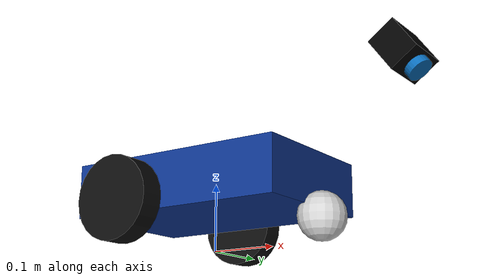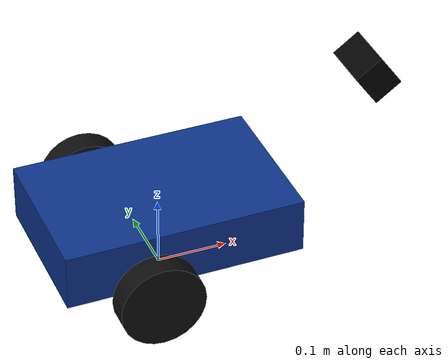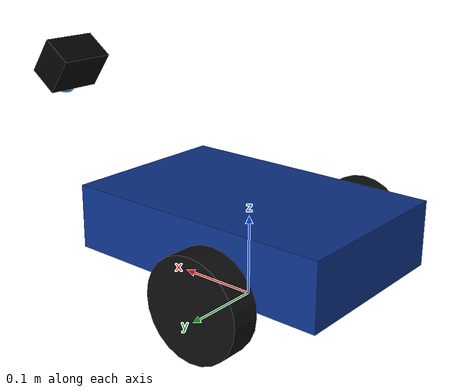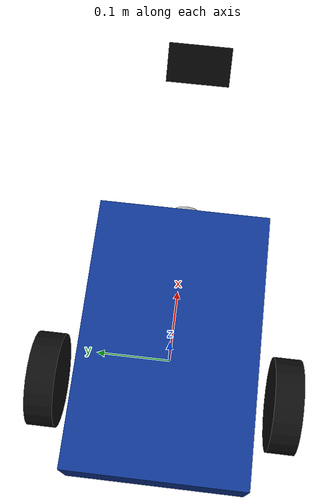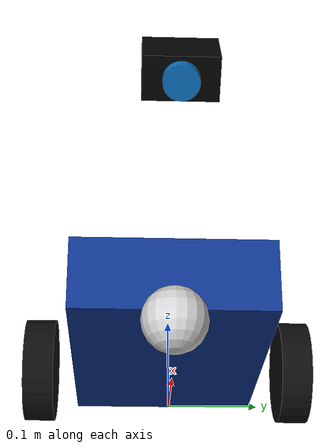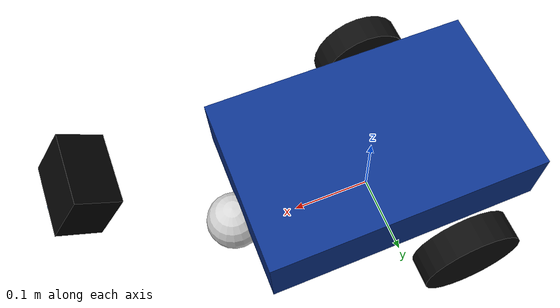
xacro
<?xml version="1.0"?>
<robot xmlns:xacro="http://ros.org/wiki/xacro" name="three_wheel_camera_car">

  <xacro:property name="wheel_radius" value="0.06"/>
  <xacro:property name="wheel_width" value="0.035"/>
  <xacro:property name="wheel_separation" value="0.30"/>
  <xacro:property name="base_z" value="0.09"/>

  <material name="body_blue"><color rgba="0.05 0.20 0.55 1"/></material>
  <material name="dark_gray"><color rgba="0.05 0.05 0.05 1"/></material>
  <material name="camera_black"><color rgba="0.01 0.01 0.01 1"/></material>
  <material name="glass"><color rgba="0.10 0.55 0.90 0.85"/></material>
  <material name="metal"><color rgba="0.55 0.55 0.58 1"/></material>
  <material name="caster_light"><color rgba="0.82 0.82 0.82 1"/></material>

  <xacro:macro name="box_inertial" params="m x y z">
    <inertial>
      <mass value="${m}"/>
      <origin xyz="0 0 0" rpy="0 0 0"/>
      <inertia ixx="${m*(y*y+z*z)/12.0}" ixy="0" ixz="0" iyy="${m*(x*x+z*z)/12.0}" iyz="0" izz="${m*(x*x+y*y)/12.0}"/>
    </inertial>
  </xacro:macro>

  <xacro:macro name="cylinder_inertial" params="m r l">
    <inertial>
      <mass value="${m}"/>
      <origin xyz="0 0 0" rpy="0 0 0"/>
      <inertia ixx="${m*(3*r*r+l*l)/12.0}" ixy="0" ixz="0" iyy="${m*(3*r*r+l*l)/12.0}" iyz="0" izz="${m*r*r/2.0}"/>
    </inertial>
  </xacro:macro>

  <link name="base_footprint"/>

  <joint name="base_footprint_joint" type="fixed">
    <parent link="base_footprint"/>
    <child link="base_link"/>
    <origin xyz="0 0 ${base_z}" rpy="0 0 0"/>
  </joint>

  <link name="base_link">
    <visual>
      <origin xyz="0 0 0" rpy="0 0 0"/>
      <geometry><box size="0.34 0.22 0.08"/></geometry>
      <material name="body_blue"/>
    </visual>
    <collision>
      <origin xyz="0 0 0" rpy="0 0 0"/>
      <geometry><box size="0.34 0.22 0.08"/></geometry>
    </collision>
    <xacro:box_inertial m="1.25" x="0.34" y="0.22" z="0.08"/>
  </link>

  <link name="left_wheel_link">
    <visual>
      <origin xyz="0 0 0" rpy="1.57079632679 0 0"/>
      <geometry><cylinder radius="${wheel_radius}" length="${wheel_width}"/></geometry>
      <material name="dark_gray"/>
    </visual>
    <collision>
      <origin xyz="0 0 0" rpy="1.57079632679 0 0"/>
      <geometry><cylinder radius="${wheel_radius}" length="${wheel_width}"/></geometry>
    </collision>
    <xacro:cylinder_inertial m="0.14" r="${wheel_radius}" l="${wheel_width}"/>
  </link>

  <link name="right_wheel_link">
    <visual>
      <origin xyz="0 0 0" rpy="1.57079632679 0 0"/>
      <geometry><cylinder radius="${wheel_radius}" length="${wheel_width}"/></geometry>
      <material name="dark_gray"/>
    </visual>
    <collision>
      <origin xyz="0 0 0" rpy="1.57079632679 0 0"/>
      <geometry><cylinder radius="${wheel_radius}" length="${wheel_width}"/></geometry>
    </collision>
    <xacro:cylinder_inertial m="0.14" r="${wheel_radius}" l="${wheel_width}"/>
  </link>

  <joint name="left_wheel_joint" type="continuous">
    <parent link="base_link"/>
    <child link="left_wheel_link"/>
    <origin xyz="-0.055 0.15 -0.030" rpy="0 0 0"/>
    <axis xyz="0 1 0"/>
  </joint>

  <joint name="right_wheel_joint" type="continuous">
    <parent link="base_link"/>
    <child link="right_wheel_link"/>
    <origin xyz="-0.055 -0.15 -0.030" rpy="0 0 0"/>
    <axis xyz="0 1 0"/>
  </joint>

  <link name="front_caster_link">
    <visual>
      <origin xyz="0 0 0" rpy="0 0 0"/>
      <geometry><sphere radius="0.035"/></geometry>
      <material name="caster_light"/>
    </visual>
    <collision>
      <origin xyz="0 0 0" rpy="0 0 0"/>
      <geometry><sphere radius="0.035"/></geometry>
      <surface><friction><ode><mu>0.05</mu><mu2>0.05</mu2></ode></friction></surface>
    </collision>
    <inertial>
      <mass value="0.05"/>
      <origin xyz="0 0 0" rpy="0 0 0"/>
      <inertia ixx="0.00002" ixy="0" ixz="0" iyy="0.00002" iyz="0" izz="0.00002"/>
    </inertial>
  </link>

  <joint name="front_caster_joint" type="fixed">
    <parent link="base_link"/>
    <child link="front_caster_link"/>
    <origin xyz="0.18 0 -0.055" rpy="0 0 0"/>
  </joint>

  <!-- Front-down camera. Gazebo camera optical axis follows the camera_link +X axis. -->
  <link name="camera_link">
    <visual>
      <origin xyz="0 0 0" rpy="0 0 0"/>
      <geometry><box size="0.055 0.075 0.045"/></geometry>
      <material name="camera_black"/>
    </visual>
    <visual>
      <origin xyz="0.033 0 0" rpy="0 1.57079632679 0"/>
      <geometry><cylinder radius="0.018" length="0.012"/></geometry>
      <material name="glass"/>
    </visual>
    <collision>
      <origin xyz="0 0 0" rpy="0 0 0"/>
      <geometry><box size="0.055 0.075 0.045"/></geometry>
    </collision>
    <xacro:box_inertial m="0.05" x="0.055" y="0.075" z="0.045"/>
  </link>

  <joint name="camera_joint" type="fixed">
    <parent link="base_link"/>
    <child link="camera_link"/>
    <!-- x forward, z up. Positive pitch around Y aims the +X camera axis downward. -->
    <origin xyz="0.31 0 0.155" rpy="0 0.95 0"/>
  </joint>

  <gazebo reference="base_link"><material>Gazebo/Blue</material></gazebo>
  <gazebo reference="left_wheel_link"><material>Gazebo/Black</material><mu1>1.5</mu1><mu2>1.5</mu2></gazebo>
  <gazebo reference="right_wheel_link"><material>Gazebo/Black</material><mu1>1.5</mu1><mu2>1.5</mu2></gazebo>
  <gazebo reference="front_caster_link"><material>Gazebo/White</material><mu1>0.05</mu1><mu2>0.05</mu2></gazebo>
  <gazebo reference="camera_link"><material>Gazebo/Black</material></gazebo>

  <gazebo reference="camera_link">
    <sensor type="camera" name="front_down_camera">
      <always_on>true</always_on>
      <update_rate>30</update_rate>
      <visualize>true</visualize>
      <camera name="front_down_camera">
        <horizontal_fov>1.3962634</horizontal_fov>
        <image><width>640</width><height>480</height><format>R8G8B8</format></image>
        <clip><near>0.05</near><far>8.0</far></clip>
        <noise><type>gaussian</type><mean>0.0</mean><stddev>0.004</stddev></noise>
      </camera>
      <plugin name="gazebo_ros_camera" filename="libgazebo_ros_camera.so">
        <alwaysOn>true</alwaysOn>
        <updateRate>30.0</updateRate>
        <cameraName>camera</cameraName>
        <imageTopicName>image_raw</imageTopicName>
        <cameraInfoTopicName>camera_info</cameraInfoTopicName>
        <frameName>camera_link</frameName>
        <hackBaseline>0.0</hackBaseline>
      </plugin>
    </sensor>
  </gazebo>

  <gazebo>
    <plugin name="diff_drive_controller" filename="libgazebo_ros_diff_drive.so">
      <alwaysOn>true</alwaysOn>
      <updateRate>100</updateRate>
      <leftJoint>left_wheel_joint</leftJoint>
      <rightJoint>right_wheel_joint</rightJoint>
      <wheelSeparation>${wheel_separation}</wheelSeparation>
      <wheelDiameter>${2.0 * wheel_radius}</wheelDiameter>
      <wheelAcceleration>2.5</wheelAcceleration>
      <wheelTorque>2.0</wheelTorque>
      <commandTopic>cmd_vel</commandTopic>
      <odometryTopic>odom</odometryTopic>
      <odometryFrame>odom</odometryFrame>
      <robotBaseFrame>base_footprint</robotBaseFrame>
      <publishTf>true</publishTf>
      <publishWheelTF>false</publishWheelTF>
      <publishWheelJointState>true</publishWheelJointState>
      <legacyMode>false</legacyMode>
      <odometrySource>world</odometrySource>
    </plugin>
  </gazebo>

</robot>
